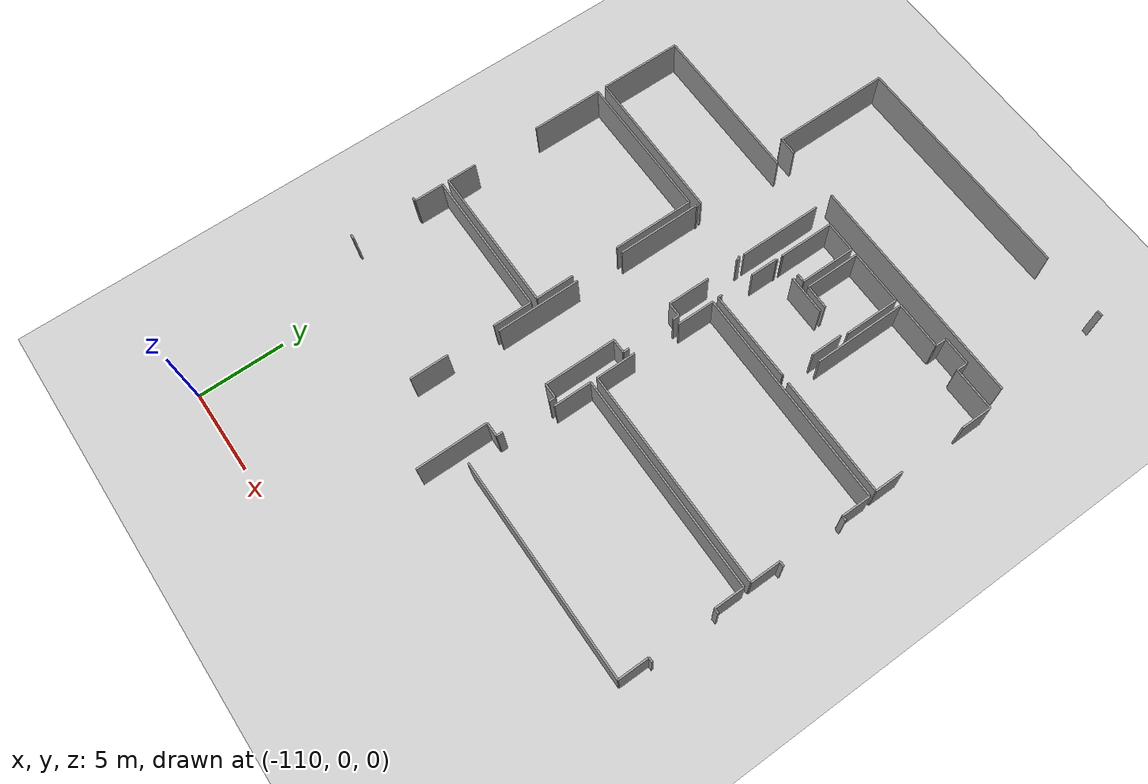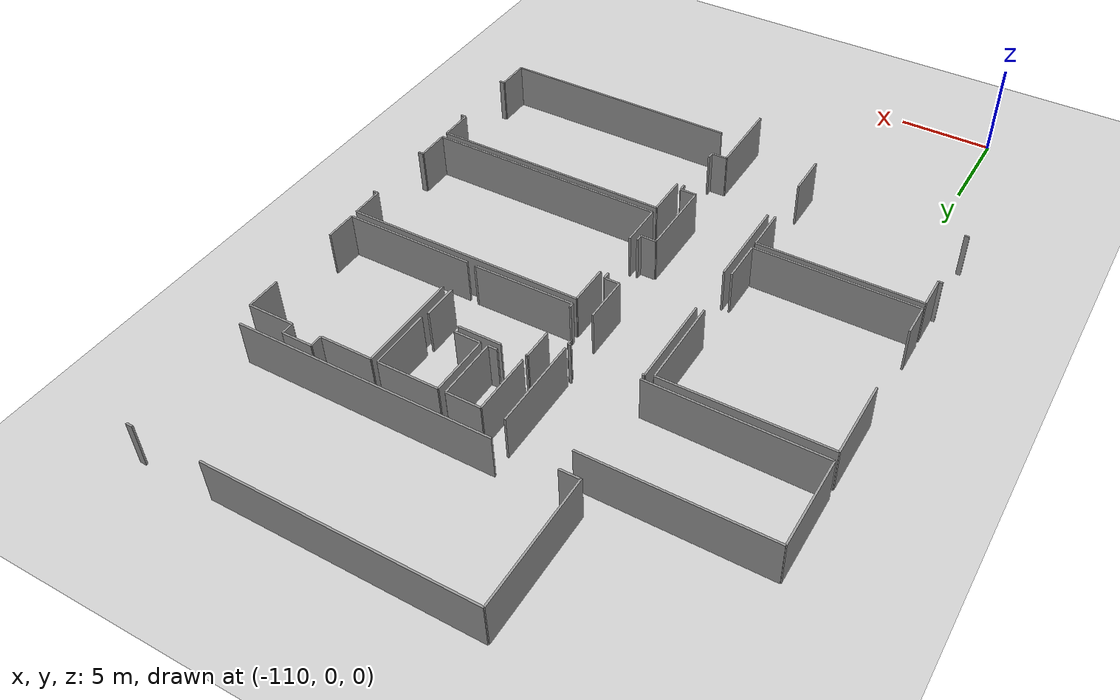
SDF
<sdf version="1.6">
 <world name="default">
  <model name="ground_plane">
   <static>1</static>
   <link name="link">
    <collision name="collision">
     <geometry><plane><normal>0 0 1</normal><size>100 100</size></plane></geometry>
     <surface><friction><ode><mu>100</mu><mu2>50</mu2></ode></friction></surface>
    </collision>
    <visual name="visual">
     <cast_shadows>0</cast_shadows>
     <geometry><plane><normal>0 0 1</normal><size>100 100</size></plane></geometry>
     <material>
      <script><uri>file://media/materials/scripts/gazebo.material</uri><name>Gazebo/Grey</name></script>
     </material>
    </visual>
   </link>
  </model>
  <model name="0510035520_A_40_1_103">
   <static>1</static>
   <link name="Wall_240">
    <collision name="Wall_240_Collision">
     <geometry><box><size>6.969245119 0.1 2.5</size></box></geometry>
     <pose>3.4846225595 0 1.25 0 0 0</pose>
    </collision>
    <visual name="Wall_240_Visual">
     <pose>3.4846225595 0 1.25 0 0 0</pose>
     <geometry><box><size>6.969245119 0.1 2.5</size></box></geometry>
     <material>
      <script><uri>file://media/materials/scripts/gazebo.material</uri><name>Gazebo/Grey</name></script>
      <ambient>1 1 1 1</ambient>
     </material>
    </visual>
    <pose>8.7397922602 -35.2068832051 0 0 0 1.57079632679</pose>
   </link>
   <link name="Wall_241">
    <collision name="Wall_241_Collision">
     <geometry><box><size>14.0143780814 0.1 2.5</size></box></geometry>
     <pose>7.00718904068 0 1.25 0 0 0</pose>
    </collision>
    <visual name="Wall_241_Visual">
     <pose>7.00718904068 0 1.25 0 0 0</pose>
     <geometry><box><size>14.0143780814 0.1 2.5</size></box></geometry>
     <material>
      <script><uri>file://media/materials/scripts/gazebo.material</uri><name>Gazebo/Grey</name></script>
      <ambient>1 1 1 1</ambient>
     </material>
    </visual>
    <pose>8.7397922602 -28.2376380861 0 0 0 0.0</pose>
   </link>
   <link name="Wall_242">
    <collision name="Wall_242_Collision">
     <geometry><box><size>0.358880971567 0.1 2.5</size></box></geometry>
     <pose>0.179440485784 0 1.25 0 0 0</pose>
    </collision>
    <visual name="Wall_242_Visual">
     <pose>0.179440485784 0 1.25 0 0 0</pose>
     <geometry><box><size>0.358880971567 0.1 2.5</size></box></geometry>
     <material>
      <script><uri>file://media/materials/scripts/gazebo.material</uri><name>Gazebo/Grey</name></script>
      <ambient>1 1 1 1</ambient>
     </material>
    </visual>
    <pose>26.5016084923 -28.2376380861 0 0 0 0.0</pose>
   </link>
   <link name="Wall_244">
    <collision name="Wall_244_Collision">
     <geometry><box><size>13.7882373843 0.1 2.5</size></box></geometry>
     <pose>6.89411869214 0 1.25 0 0 0</pose>
    </collision>
    <visual name="Wall_244_Visual">
     <pose>6.89411869214 0 1.25 0 0 0</pose>
     <geometry><box><size>13.7882373843 0.1 2.5</size></box></geometry>
     <material>
      <script><uri>file://media/materials/scripts/gazebo.material</uri><name>Gazebo/Grey</name></script>
      <ambient>1 1 1 1</ambient>
     </material>
    </visual>
    <pose>26.8604894639 -35.1700814081 0 0 0 3.14159265359</pose>
   </link>
   <link name="Wall_245">
    <collision name="Wall_245_Collision">
     <geometry><box><size>1.07435866524 0.1 2.5</size></box></geometry>
     <pose>0.537179332618 0 1.25 0 0 0</pose>
    </collision>
    <visual name="Wall_245_Visual">
     <pose>0.537179332618 0 1.25 0 0 0</pose>
     <geometry><box><size>1.07435866524 0.1 2.5</size></box></geometry>
     <material>
      <script><uri>file://media/materials/scripts/gazebo.material</uri><name>Gazebo/Grey</name></script>
      <ambient>1 1 1 1</ambient>
     </material>
    </visual>
    <pose>9.81592756391 -35.1700814081 0 0 0 3.14159265359</pose>
   </link>
   <link name="Wall_246">
    <collision name="Wall_246_Collision">
     <geometry><box><size>0.0368446563628 0.1 2.5</size></box></geometry>
     <pose>0.0184223281814 0 1.25 0 0 0</pose>
    </collision>
    <visual name="Wall_246_Visual">
     <pose>0.0184223281814 0 1.25 0 0 0</pose>
     <geometry><box><size>0.0368446563628 0.1 2.5</size></box></geometry>
     <material>
      <script><uri>file://media/materials/scripts/gazebo.material</uri><name>Gazebo/Grey</name></script>
      <ambient>1 1 1 1</ambient>
     </material>
    </visual>
    <pose>8.74156889867 -35.1700814081 0 0 0 -1.61903473797</pose>
   </link>
   <link name="Wall_247">
    <collision name="Wall_247_Collision">
     <geometry><box><size>4.82331964899 0.1 2.5</size></box></geometry>
     <pose>2.41165982449 0 1.25 0 0 0</pose>
    </collision>
    <visual name="Wall_247_Visual">
     <pose>2.41165982449 0 1.25 0 0 0</pose>
     <geometry><box><size>4.82331964899 0.1 2.5</size></box></geometry>
     <material>
      <script><uri>file://media/materials/scripts/gazebo.material</uri><name>Gazebo/Grey</name></script>
      <ambient>1 1 1 1</ambient>
     </material>
    </visual>
    <pose>0.231978223488 -41.1289268469 0 0 0 1.57079632679</pose>
   </link>
   <link name="Wall_248">
    <collision name="Wall_248_Collision">
     <geometry><box><size>9.59334014378 0.1 2.5</size></box></geometry>
     <pose>4.79667007189 0 1.25 0 0 0</pose>
    </collision>
    <visual name="Wall_248_Visual">
     <pose>4.79667007189 0 1.25 0 0 0</pose>
     <geometry><box><size>9.59334014378 0.1 2.5</size></box></geometry>
     <material>
      <script><uri>file://media/materials/scripts/gazebo.material</uri><name>Gazebo/Grey</name></script>
      <ambient>1 1 1 1</ambient>
     </material>
    </visual>
    <pose>0.231978223488 -36.3056071979 0 0 0 0.0</pose>
   </link>
   <link name="Wall_249">
    <collision name="Wall_249_Collision">
     <geometry><box><size>4.89946129783 0.1 2.5</size></box></geometry>
     <pose>2.44973064892 0 1.25 0 0 0</pose>
    </collision>
    <visual name="Wall_249_Visual">
     <pose>2.44973064892 0 1.25 0 0 0</pose>
     <geometry><box><size>4.89946129783 0.1 2.5</size></box></geometry>
     <material>
      <script><uri>file://media/materials/scripts/gazebo.material</uri><name>Gazebo/Grey</name></script>
      <ambient>1 1 1 1</ambient>
     </material>
    </visual>
    <pose>13.1829112759 -36.3056071979 0 0 0 -1.57079632679</pose>
   </link>
   <link name="Wall_250">
    <collision name="Wall_250_Collision">
     <geometry><box><size>9.14289864022 0.1 2.5</size></box></geometry>
     <pose>4.57144932011 0 1.25 0 0 0</pose>
    </collision>
    <visual name="Wall_250_Visual">
     <pose>4.57144932011 0 1.25 0 0 0</pose>
     <geometry><box><size>9.14289864022 0.1 2.5</size></box></geometry>
     <material>
      <script><uri>file://media/materials/scripts/gazebo.material</uri><name>Gazebo/Grey</name></script>
      <ambient>1 1 1 1</ambient>
     </material>
    </visual>
    <pose>9.37455980609 -41.2050684958 0 0 0 3.13326460228</pose>
   </link>
   <link name="Wall_251">
    <collision name="Wall_251_Collision">
     <geometry><box><size>1.83958223615 0.1 2.5</size></box></geometry>
     <pose>0.919791118077 0 1.25 0 0 0</pose>
    </collision>
    <visual name="Wall_251_Visual">
     <pose>0.919791118077 0 1.25 0 0 0</pose>
     <geometry><box><size>1.83958223615 0.1 2.5</size></box></geometry>
     <material>
      <script><uri>file://media/materials/scripts/gazebo.material</uri><name>Gazebo/Grey</name></script>
      <ambient>1 1 1 1</ambient>
     </material>
    </visual>
    <pose>14.4222435137 -36.3583987411 0 0 0 0.0</pose>
   </link>
   <link name="Wall_252">
    <collision name="Wall_252_Collision">
     <geometry><box><size>3.24667990685 0.1 2.5</size></box></geometry>
     <pose>1.62333995343 0 1.25 0 0 0</pose>
    </collision>
    <visual name="Wall_252_Visual">
     <pose>1.62333995343 0 1.25 0 0 0</pose>
     <geometry><box><size>3.24667990685 0.1 2.5</size></box></geometry>
     <material>
      <script><uri>file://media/materials/scripts/gazebo.material</uri><name>Gazebo/Grey</name></script>
      <ambient>1 1 1 1</ambient>
     </material>
    </visual>
    <pose>16.2618257498 -36.3583987411 0 0 0 -1.57079632679</pose>
   </link>
   <link name="Wall_253">
    <collision name="Wall_253_Collision">
     <geometry><box><size>0.497712577966 0.1 2.5</size></box></geometry>
     <pose>0.248856288983 0 1.25 0 0 0</pose>
    </collision>
    <visual name="Wall_253_Visual">
     <pose>0.248856288983 0 1.25 0 0 0</pose>
     <geometry><box><size>0.497712577966 0.1 2.5</size></box></geometry>
     <material>
      <script><uri>file://media/materials/scripts/gazebo.material</uri><name>Gazebo/Grey</name></script>
      <ambient>1 1 1 1</ambient>
     </material>
    </visual>
    <pose>16.2618257498 -39.605078648 0 0 0 3.14159265359</pose>
   </link>
   <link name="Wall_254">
    <collision name="Wall_254_Collision">
     <geometry><box><size>0.0654818180088 0.1 2.5</size></box></geometry>
     <pose>0.0327409090044 0 1.25 0 0 0</pose>
    </collision>
    <visual name="Wall_254_Visual">
     <pose>0.0327409090044 0 1.25 0 0 0</pose>
     <geometry><box><size>0.0654818180088 0.1 2.5</size></box></geometry>
     <material>
      <script><uri>file://media/materials/scripts/gazebo.material</uri><name>Gazebo/Grey</name></script>
      <ambient>1 1 1 1</ambient>
     </material>
    </visual>
    <pose>14.4867101097 -39.605078648 0 0 0 3.14159265359</pose>
   </link>
   <link name="Wall_255">
    <collision name="Wall_255_Collision">
     <geometry><box><size>3.24668006558 0.1 2.5</size></box></geometry>
     <pose>1.62334003279 0 1.25 0 0 0</pose>
    </collision>
    <visual name="Wall_255_Visual">
     <pose>1.62334003279 0 1.25 0 0 0</pose>
     <geometry><box><size>3.24668006558 0.1 2.5</size></box></geometry>
     <material>
      <script><uri>file://media/materials/scripts/gazebo.material</uri><name>Gazebo/Grey</name></script>
      <ambient>1 1 1 1</ambient>
     </material>
    </visual>
    <pose>14.4212282917 -39.605078648 0 0 0 1.57048363137</pose>
   </link>
   <link name="Wall_256">
    <collision name="Wall_256_Collision">
     <geometry><box><size>3.23449724304 0.1 2.5</size></box></geometry>
     <pose>1.61724862152 0 1.25 0 0 0</pose>
    </collision>
    <visual name="Wall_256_Visual">
     <pose>1.61724862152 0 1.25 0 0 0</pose>
     <geometry><box><size>3.23449724304 0.1 2.5</size></box></geometry>
     <material>
      <script><uri>file://media/materials/scripts/gazebo.material</uri><name>Gazebo/Grey</name></script>
      <ambient>1 1 1 1</ambient>
     </material>
    </visual>
    <pose>16.6580161293 -39.5903579292 0 0 0 1.57079632679</pose>
   </link>
   <link name="Wall_257">
    <collision name="Wall_257_Collision">
     <geometry><box><size>3.26799956853 0.1 2.5</size></box></geometry>
     <pose>1.63399978427 0 1.25 0 0 0</pose>
    </collision>
    <visual name="Wall_257_Visual">
     <pose>1.63399978427 0 1.25 0 0 0</pose>
     <geometry><box><size>3.26799956853 0.1 2.5</size></box></geometry>
     <material>
      <script><uri>file://media/materials/scripts/gazebo.material</uri><name>Gazebo/Grey</name></script>
      <ambient>1 1 1 1</ambient>
     </material>
    </visual>
    <pose>16.6580161293 -36.3558606862 0 0 0 0.0</pose>
   </link>
   <link name="Wall_258">
    <collision name="Wall_258_Collision">
     <geometry><box><size>3.24972557281 0.1 2.5</size></box></geometry>
     <pose>1.6248627864 0 1.25 0 0 0</pose>
    </collision>
    <visual name="Wall_258_Visual">
     <pose>1.6248627864 0 1.25 0 0 0</pose>
     <geometry><box><size>3.24972557281 0.1 2.5</size></box></geometry>
     <material>
      <script><uri>file://media/materials/scripts/gazebo.material</uri><name>Gazebo/Grey</name></script>
      <ambient>1 1 1 1</ambient>
     </material>
    </visual>
    <pose>19.9260156979 -36.3558606862 0 0 0 -1.57079632679</pose>
   </link>
   <link name="Wall_259">
    <collision name="Wall_259_Collision">
     <geometry><box><size>1.43484328298 0.1 2.5</size></box></geometry>
     <pose>0.717421641491 0 1.25 0 0 0</pose>
    </collision>
    <visual name="Wall_259_Visual">
     <pose>0.717421641491 0 1.25 0 0 0</pose>
     <geometry><box><size>1.43484328298 0.1 2.5</size></box></geometry>
     <material>
      <script><uri>file://media/materials/scripts/gazebo.material</uri><name>Gazebo/Grey</name></script>
      <ambient>1 1 1 1</ambient>
     </material>
    </visual>
    <pose>18.0927785991 -39.605586259 0 0 0 3.13097921876</pose>
   </link>
   <link name="Wall_260">
    <collision name="Wall_260_Collision">
     <geometry><box><size>2.8210480898 0.1 2.5</size></box></geometry>
     <pose>1.4105240449 0 1.25 0 0 0</pose>
    </collision>
    <visual name="Wall_260_Visual">
     <pose>1.4105240449 0 1.25 0 0 0</pose>
     <geometry><box><size>2.8210480898 0.1 2.5</size></box></geometry>
     <material>
      <script><uri>file://media/materials/scripts/gazebo.material</uri><name>Gazebo/Grey</name></script>
      <ambient>1 1 1 1</ambient>
     </material>
    </visual>
    <pose>20.2851504749 -36.3459622718 0 0 0 0.0</pose>
   </link>
   <link name="Wall_261">
    <collision name="Wall_261_Collision">
     <geometry><box><size>0.661670928484 0.1 2.5</size></box></geometry>
     <pose>0.330835464242 0 1.25 0 0 0</pose>
    </collision>
    <visual name="Wall_261_Visual">
     <pose>0.330835464242 0 1.25 0 0 0</pose>
     <geometry><box><size>0.661670928484 0.1 2.5</size></box></geometry>
     <material>
      <script><uri>file://media/materials/scripts/gazebo.material</uri><name>Gazebo/Grey</name></script>
      <ambient>1 1 1 1</ambient>
     </material>
    </visual>
    <pose>23.1061985647 -36.3459622718 0 0 0 1.57079632679</pose>
   </link>
   <link name="Wall_262">
    <collision name="Wall_262_Collision">
     <geometry><box><size>1.65861891739 0.1 2.5</size></box></geometry>
     <pose>0.829309458696 0 1.25 0 0 0</pose>
    </collision>
    <visual name="Wall_262_Visual">
     <pose>0.829309458696 0 1.25 0 0 0</pose>
     <geometry><box><size>1.65861891739 0.1 2.5</size></box></geometry>
     <material>
      <script><uri>file://media/materials/scripts/gazebo.material</uri><name>Gazebo/Grey</name></script>
      <ambient>1 1 1 1</ambient>
     </material>
    </visual>
    <pose>23.1061985647 -35.6842913433 0 0 0 0.0</pose>
   </link>
   <link name="Wall_263">
    <collision name="Wall_263_Collision">
     <geometry><box><size>0.654818180088 0.1 2.5</size></box></geometry>
     <pose>0.327409090044 0 1.25 0 0 0</pose>
    </collision>
    <visual name="Wall_263_Visual">
     <pose>0.327409090044 0 1.25 0 0 0</pose>
     <geometry><box><size>0.654818180088 0.1 2.5</size></box></geometry>
     <material>
      <script><uri>file://media/materials/scripts/gazebo.material</uri><name>Gazebo/Grey</name></script>
      <ambient>1 1 1 1</ambient>
     </material>
    </visual>
    <pose>24.7648174821 -35.6842913433 0 0 0 -1.57079632679</pose>
   </link>
   <link name="Wall_264">
    <collision name="Wall_264_Collision">
     <geometry><box><size>2.51394343945 0.1 2.5</size></box></geometry>
     <pose>1.25697171972 0 1.25 0 0 0</pose>
    </collision>
    <visual name="Wall_264_Visual">
     <pose>1.25697171972 0 1.25 0 0 0</pose>
     <geometry><box><size>2.51394343945 0.1 2.5</size></box></geometry>
     <material>
      <script><uri>file://media/materials/scripts/gazebo.material</uri><name>Gazebo/Grey</name></script>
      <ambient>1 1 1 1</ambient>
     </material>
    </visual>
    <pose>24.7648174821 -36.3391095234 0 0 0 0.0</pose>
   </link>
   <link name="Wall_265">
    <collision name="Wall_265_Collision">
     <geometry><box><size>1.8301914328 0.1 2.5</size></box></geometry>
     <pose>0.915095716398 0 1.25 0 0 0</pose>
    </collision>
    <visual name="Wall_265_Visual">
     <pose>0.915095716398 0 1.25 0 0 0</pose>
     <geometry><box><size>1.8301914328 0.1 2.5</size></box></geometry>
     <material>
      <script><uri>file://media/materials/scripts/gazebo.material</uri><name>Gazebo/Grey</name></script>
      <ambient>1 1 1 1</ambient>
     </material>
    </visual>
    <pose>27.2787609216 -36.3391095234 0 0 0 -1.57079632679</pose>
   </link>
   <link name="Wall_266">
    <collision name="Wall_266_Collision">
     <geometry><box><size>1.70075062975 0.1 2.5</size></box></geometry>
     <pose>0.850375314877 0 1.25 0 0 0</pose>
    </collision>
    <visual name="Wall_266_Visual">
     <pose>0.850375314877 0 1.25 0 0 0</pose>
     <geometry><box><size>1.70075062975 0.1 2.5</size></box></geometry>
     <material>
      <script><uri>file://media/materials/scripts/gazebo.material</uri><name>Gazebo/Grey</name></script>
      <ambient>1 1 1 1</ambient>
     </material>
    </visual>
    <pose>27.2787609216 -42.0921187048 0 0 0 -1.57079632679</pose>
   </link>
   <link name="Wall_267">
    <collision name="Wall_267_Collision">
     <geometry><box><size>6.99513327961 0.1 2.5</size></box></geometry>
     <pose>3.49756663981 0 1.25 0 0 0</pose>
    </collision>
    <visual name="Wall_267_Visual">
     <pose>3.49756663981 0 1.25 0 0 0</pose>
     <geometry><box><size>6.99513327961 0.1 2.5</size></box></geometry>
     <material>
      <script><uri>file://media/materials/scripts/gazebo.material</uri><name>Gazebo/Grey</name></script>
      <ambient>1 1 1 1</ambient>
     </material>
    </visual>
    <pose>27.2787609216 -43.7928693346 0 0 0 3.14159265359</pose>
   </link>
   <link name="Wall_268">
    <collision name="Wall_268_Collision">
     <geometry><box><size>5.43270685869 0.1 2.5</size></box></geometry>
     <pose>2.71635342935 0 1.25 0 0 0</pose>
    </collision>
    <visual name="Wall_268_Visual">
     <pose>2.71635342935 0 1.25 0 0 0</pose>
     <geometry><box><size>5.43270685869 0.1 2.5</size></box></geometry>
     <material>
      <script><uri>file://media/materials/scripts/gazebo.material</uri><name>Gazebo/Grey</name></script>
      <ambient>1 1 1 1</ambient>
     </material>
    </visual>
    <pose>20.283627642 -41.7786689171 0 0 0 1.57051601846</pose>
   </link>
   <link name="Wall_269">
    <collision name="Wall_269_Collision">
     <geometry><box><size>0.245176109289 0.1 2.5</size></box></geometry>
     <pose>0.122588054644 0 1.25 0 0 0</pose>
    </collision>
    <visual name="Wall_269_Visual">
     <pose>0.122588054644 0 1.25 0 0 0</pose>
     <geometry><box><size>0.245176109289 0.1 2.5</size></box></geometry>
     <material>
      <script><uri>file://media/materials/scripts/gazebo.material</uri><name>Gazebo/Grey</name></script>
      <ambient>1 1 1 1</ambient>
     </material>
    </visual>
    <pose>14.3933096871 -43.8111433303 0 0 0 1.57079632679</pose>
   </link>
   <link name="Wall_270">
    <collision name="Wall_270_Collision">
     <geometry><box><size>1.63450739526 0.1 2.5</size></box></geometry>
     <pose>0.817253697629 0 1.25 0 0 0</pose>
    </collision>
    <visual name="Wall_270_Visual">
     <pose>0.817253697629 0 1.25 0 0 0</pose>
     <geometry><box><size>1.63450739526 0.1 2.5</size></box></geometry>
     <material>
      <script><uri>file://media/materials/scripts/gazebo.material</uri><name>Gazebo/Grey</name></script>
      <ambient>1 1 1 1</ambient>
     </material>
    </visual>
    <pose>14.3933096871 -41.5956751543 0 0 0 1.57079632679</pose>
   </link>
   <link name="Wall_271">
    <collision name="Wall_271_Collision">
     <geometry><box><size>0.104567864417 0.1 2.5</size></box></geometry>
     <pose>0.0522839322086 0 1.25 0 0 0</pose>
    </collision>
    <visual name="Wall_271_Visual">
     <pose>0.0522839322086 0 1.25 0 0 0</pose>
     <geometry><box><size>0.104567864417 0.1 2.5</size></box></geometry>
     <material>
      <script><uri>file://media/materials/scripts/gazebo.material</uri><name>Gazebo/Grey</name></script>
      <ambient>1 1 1 1</ambient>
     </material>
    </visual>
    <pose>14.3933096871 -39.9611677591 0 0 0 0.0</pose>
   </link>
   <link name="Wall_272">
    <collision name="Wall_272_Collision">
     <geometry><box><size>2.32917303824 0.1 2.5</size></box></geometry>
     <pose>1.16458651912 0 1.25 0 0 0</pose>
    </collision>
    <visual name="Wall_272_Visual">
     <pose>1.16458651912 0 1.25 0 0 0</pose>
     <geometry><box><size>2.32917303824 0.1 2.5</size></box></geometry>
     <material>
      <script><uri>file://media/materials/scripts/gazebo.material</uri><name>Gazebo/Grey</name></script>
      <ambient>1 1 1 1</ambient>
     </material>
    </visual>
    <pose>15.7950774424 -39.9611677591 0 0 0 0.0</pose>
   </link>
   <link name="Wall_273">
    <collision name="Wall_273_Collision">
     <geometry><box><size>1.85709481539 0.1 2.5</size></box></geometry>
     <pose>0.928547407694 0 1.25 0 0 0</pose>
    </collision>
    <visual name="Wall_273_Visual">
     <pose>0.928547407694 0 1.25 0 0 0</pose>
     <geometry><box><size>1.85709481539 0.1 2.5</size></box></geometry>
     <material>
      <script><uri>file://media/materials/scripts/gazebo.material</uri><name>Gazebo/Grey</name></script>
      <ambient>1 1 1 1</ambient>
     </material>
    </visual>
    <pose>19.8036814487 -39.9611677591 0 0 0 -1.57079632679</pose>
   </link>
   <link name="Wall_274">
    <collision name="Wall_274_Collision">
     <geometry><box><size>0.0535529596894 0.1 2.5</size></box></geometry>
     <pose>0.0267764798447 0 1.25 0 0 0</pose>
    </collision>
    <visual name="Wall_274_Visual">
     <pose>0.0267764798447 0 1.25 0 0 0</pose>
     <geometry><box><size>0.0535529596894 0.1 2.5</size></box></geometry>
     <material>
      <script><uri>file://media/materials/scripts/gazebo.material</uri><name>Gazebo/Grey</name></script>
      <ambient>1 1 1 1</ambient>
     </material>
    </visual>
    <pose>19.8036814487 -43.7093673263 0 0 0 -1.57079632679</pose>
   </link>
   <link name="Wall_275">
    <collision name="Wall_275_Collision">
     <geometry><box><size>5.41058666512 0.1 2.5</size></box></geometry>
     <pose>2.70529333256 0 1.25 0 0 0</pose>
    </collision>
    <visual name="Wall_275_Visual">
     <pose>2.70529333256 0 1.25 0 0 0</pose>
     <geometry><box><size>5.41058666512 0.1 2.5</size></box></geometry>
     <material>
      <script><uri>file://media/materials/scripts/gazebo.material</uri><name>Gazebo/Grey</name></script>
      <ambient>1 1 1 1</ambient>
     </material>
    </visual>
    <pose>19.8036814487 -43.762920286 0 0 0 -3.13267981553</pose>
   </link>
   <link name="Wall_276">
    <collision name="Wall_276_Collision">
     <geometry><box><size>12.8760604311 0.1 2.5</size></box></geometry>
     <pose>6.43803021554 0 1.25 0 0 0</pose>
    </collision>
    <visual name="Wall_276_Visual">
     <pose>6.43803021554 0 1.25 0 0 0</pose>
     <geometry><box><size>12.8760604311 0.1 2.5</size></box></geometry>
     <material>
      <script><uri>file://media/materials/scripts/gazebo.material</uri><name>Gazebo/Grey</name></script>
      <ambient>1 1 1 1</ambient>
     </material>
    </visual>
    <pose>14.4232587357 -44.192612991 0 0 0 0.0</pose>
   </link>
   <link name="Wall_277">
    <collision name="Wall_277_Collision">
     <geometry><box><size>1.73323773326 0.1 2.5</size></box></geometry>
     <pose>0.866618866632 0 1.25 0 0 0</pose>
    </collision>
    <visual name="Wall_277_Visual">
     <pose>0.866618866632 0 1.25 0 0 0</pose>
     <geometry><box><size>1.73323773326 0.1 2.5</size></box></geometry>
     <material>
      <script><uri>file://media/materials/scripts/gazebo.material</uri><name>Gazebo/Grey</name></script>
      <ambient>1 1 1 1</ambient>
     </material>
    </visual>
    <pose>27.2993191668 -44.192612991 0 0 0 -1.57079632679</pose>
   </link>
   <link name="Wall_278">
    <collision name="Wall_278_Collision">
     <geometry><box><size>0.277409407301 0.1 2.5</size></box></geometry>
     <pose>0.13870470365 0 1.25 0 0 0</pose>
    </collision>
    <visual name="Wall_278_Visual">
     <pose>0.13870470365 0 1.25 0 0 0</pose>
     <geometry><box><size>0.277409407301 0.1 2.5</size></box></geometry>
     <material>
      <script><uri>file://media/materials/scripts/gazebo.material</uri><name>Gazebo/Grey</name></script>
      <ambient>1 1 1 1</ambient>
     </material>
    </visual>
    <pose>27.2993191668 -45.9258507243 0 0 0 0.0</pose>
   </link>
   <link name="Wall_279">
    <collision name="Wall_279_Collision">
     <geometry><box><size>0.291622515086 0.1 2.5</size></box></geometry>
     <pose>0.145811257543 0 1.25 0 0 0</pose>
    </collision>
    <visual name="Wall_279_Visual">
     <pose>0.145811257543 0 1.25 0 0 0</pose>
     <geometry><box><size>0.291622515086 0.1 2.5</size></box></geometry>
     <material>
      <script><uri>file://media/materials/scripts/gazebo.material</uri><name>Gazebo/Grey</name></script>
      <ambient>1 1 1 1</ambient>
     </material>
    </visual>
    <pose>27.5767285741 -49.77557249 0 0 0 3.14159265359</pose>
   </link>
   <link name="Wall_280">
    <collision name="Wall_280_Collision">
     <geometry><box><size>1.74821225754 0.1 2.5</size></box></geometry>
     <pose>0.874106128768 0 1.25 0 0 0</pose>
    </collision>
    <visual name="Wall_280_Visual">
     <pose>0.874106128768 0 1.25 0 0 0</pose>
     <geometry><box><size>1.74821225754 0.1 2.5</size></box></geometry>
     <material>
      <script><uri>file://media/materials/scripts/gazebo.material</uri><name>Gazebo/Grey</name></script>
      <ambient>1 1 1 1</ambient>
     </material>
    </visual>
    <pose>27.285106059 -49.77557249 0 0 0 -1.57079632679</pose>
   </link>
   <link name="Wall_281">
    <collision name="Wall_281_Collision">
     <geometry><box><size>12.8674310442 0.1 2.5</size></box></geometry>
     <pose>6.43371552211 0 1.25 0 0 0</pose>
    </collision>
    <visual name="Wall_281_Visual">
     <pose>6.43371552211 0 1.25 0 0 0</pose>
     <geometry><box><size>12.8674310442 0.1 2.5</size></box></geometry>
     <material>
      <script><uri>file://media/materials/scripts/gazebo.material</uri><name>Gazebo/Grey</name></script>
      <ambient>1 1 1 1</ambient>
     </material>
    </visual>
    <pose>27.285106059 -51.5237847476 0 0 0 3.14159265359</pose>
   </link>
   <link name="Wall_282">
    <collision name="Wall_282_Collision">
     <geometry><box><size>2.32917303824 0.1 2.5</size></box></geometry>
     <pose>1.16458651912 0 1.25 0 0 0</pose>
    </collision>
    <visual name="Wall_282_Visual">
     <pose>1.16458651912 0 1.25 0 0 0</pose>
     <geometry><box><size>2.32917303824 0.1 2.5</size></box></geometry>
     <material>
      <script><uri>file://media/materials/scripts/gazebo.material</uri><name>Gazebo/Grey</name></script>
      <ambient>1 1 1 1</ambient>
     </material>
    </visual>
    <pose>14.4176750148 -51.5237847476 0 0 0 1.57079632679</pose>
   </link>
   <link name="Wall_283">
    <collision name="Wall_283_Collision">
     <geometry><box><size>2.20684585302 0.1 2.5</size></box></geometry>
     <pose>1.10342292651 0 1.25 0 0 0</pose>
    </collision>
    <visual name="Wall_283_Visual">
     <pose>1.10342292651 0 1.25 0 0 0</pose>
     <geometry><box><size>2.20684585302 0.1 2.5</size></box></geometry>
     <material>
      <script><uri>file://media/materials/scripts/gazebo.material</uri><name>Gazebo/Grey</name></script>
      <ambient>1 1 1 1</ambient>
     </material>
    </visual>
    <pose>14.4176750148 -46.3994517801 0 0 0 1.56826614243</pose>
   </link>
   <link name="Wall_284">
    <collision name="Wall_284_Collision">
     <geometry><box><size>12.851948909 0.1 2.5</size></box></geometry>
     <pose>6.42597445448 0 1.25 0 0 0</pose>
    </collision>
    <visual name="Wall_284_Visual">
     <pose>6.42597445448 0 1.25 0 0 0</pose>
     <geometry><box><size>12.851948909 0.1 2.5</size></box></geometry>
     <material>
      <script><uri>file://media/materials/scripts/gazebo.material</uri><name>Gazebo/Grey</name></script>
      <ambient>1 1 1 1</ambient>
     </material>
    </visual>
    <pose>14.4148831543 -51.9204827381 0 0 0 0.0</pose>
   </link>
   <link name="Wall_285">
    <collision name="Wall_285_Collision">
     <geometry><box><size>1.75328836746 0.1 2.5</size></box></geometry>
     <pose>0.87664418373 0 1.25 0 0 0</pose>
    </collision>
    <visual name="Wall_285_Visual">
     <pose>0.87664418373 0 1.25 0 0 0</pose>
     <geometry><box><size>1.75328836746 0.1 2.5</size></box></geometry>
     <material>
      <script><uri>file://media/materials/scripts/gazebo.material</uri><name>Gazebo/Grey</name></script>
      <ambient>1 1 1 1</ambient>
     </material>
    </visual>
    <pose>27.2668320632 -51.9204827381 0 0 0 -1.57079632679</pose>
   </link>
   <link name="Wall_286">
    <collision name="Wall_286_Collision">
     <geometry><box><size>0.300505707451 0.1 2.5</size></box></geometry>
     <pose>0.150252853726 0 1.25 0 0 0</pose>
    </collision>
    <visual name="Wall_286_Visual">
     <pose>0.150252853726 0 1.25 0 0 0</pose>
     <geometry><box><size>0.300505707451 0.1 2.5</size></box></geometry>
     <material>
      <script><uri>file://media/materials/scripts/gazebo.material</uri><name>Gazebo/Grey</name></script>
      <ambient>1 1 1 1</ambient>
     </material>
    </visual>
    <pose>27.2668320632 -53.6737711055 0 0 0 0.0</pose>
   </link>
   <link name="Wall_287">
    <collision name="Wall_287_Collision">
     <geometry><box><size>0.271318075393 0.1 2.5</size></box></geometry>
     <pose>0.135659037696 0 1.25 0 0 0</pose>
    </collision>
    <visual name="Wall_287_Visual">
     <pose>0.135659037696 0 1.25 0 0 0</pose>
     <geometry><box><size>0.271318075393 0.1 2.5</size></box></geometry>
     <material>
      <script><uri>file://media/materials/scripts/gazebo.material</uri><name>Gazebo/Grey</name></script>
      <ambient>1 1 1 1</ambient>
     </material>
    </visual>
    <pose>27.5673377707 -57.5166401228 0 0 0 3.14159265359</pose>
   </link>
   <link name="Wall_288">
    <collision name="Wall_288_Collision">
     <geometry><box><size>1.7639481983 0.1 2.5</size></box></geometry>
     <pose>0.881974099149 0 1.25 0 0 0</pose>
    </collision>
    <visual name="Wall_288_Visual">
     <pose>0.881974099149 0 1.25 0 0 0</pose>
     <geometry><box><size>1.7639481983 0.1 2.5</size></box></geometry>
     <material>
      <script><uri>file://media/materials/scripts/gazebo.material</uri><name>Gazebo/Grey</name></script>
      <ambient>1 1 1 1</ambient>
     </material>
    </visual>
    <pose>27.2960196953 -57.5166401228 0 0 0 -1.57079632679</pose>
   </link>
   <link name="Wall_289">
    <collision name="Wall_289_Collision">
     <geometry><box><size>12.881136541 0.1 2.5</size></box></geometry>
     <pose>6.44056827051 0 1.25 0 0 0</pose>
    </collision>
    <visual name="Wall_289_Visual">
     <pose>6.44056827051 0 1.25 0 0 0</pose>
     <geometry><box><size>12.881136541 0.1 2.5</size></box></geometry>
     <material>
      <script><uri>file://media/materials/scripts/gazebo.material</uri><name>Gazebo/Grey</name></script>
      <ambient>1 1 1 1</ambient>
     </material>
    </visual>
    <pose>27.2960196953 -59.2805883211 0 0 0 3.14159265359</pose>
   </link>
   <link name="Wall_291">
    <collision name="Wall_291_Collision">
     <geometry><box><size>2.2327269497 0.1 2.5</size></box></geometry>
     <pose>1.11636347485 0 1.25 0 0 0</pose>
    </collision>
    <visual name="Wall_291_Visual">
     <pose>1.11636347485 0 1.25 0 0 0</pose>
     <geometry><box><size>2.2327269497 0.1 2.5</size></box></geometry>
     <material>
      <script><uri>file://media/materials/scripts/gazebo.material</uri><name>Gazebo/Grey</name></script>
      <ambient>1 1 1 1</ambient>
     </material>
    </visual>
    <pose>14.4148831543 -54.1532096878 0 0 0 1.57079632679</pose>
   </link>
   <link name="Wall_383">
    <collision name="Wall_383_Collision">
     <geometry><box><size>8.67659469166 0.1 2.5</size></box></geometry>
     <pose>4.33829734583 0 1.25 0 0 0</pose>
    </collision>
    <visual name="Wall_383_Visual">
     <pose>4.33829734583 0 1.25 0 0 0</pose>
     <geometry><box><size>8.67659469166 0.1 2.5</size></box></geometry>
     <material>
      <script><uri>file://media/materials/scripts/gazebo.material</uri><name>Gazebo/Grey</name></script>
      <ambient>1 1 1 1</ambient>
     </material>
    </visual>
    <pose>0.245683720281 -51.9303811524 0 0 0 0.0</pose>
   </link>
   <link name="Wall_384">
    <collision name="Wall_384_Collision">
     <geometry><box><size>2.30963001504 0.1 2.5</size></box></geometry>
     <pose>1.15481500752 0 1.25 0 0 0</pose>
    </collision>
    <visual name="Wall_384_Visual">
     <pose>1.15481500752 0 1.25 0 0 0</pose>
     <geometry><box><size>2.30963001504 0.1 2.5</size></box></geometry>
     <material>
      <script><uri>file://media/materials/scripts/gazebo.material</uri><name>Gazebo/Grey</name></script>
      <ambient>1 1 1 1</ambient>
     </material>
    </visual>
    <pose>8.92227841194 -51.9303811524 0 0 0 -1.57079632679</pose>
   </link>
   <link name="Wall_385">
    <collision name="Wall_385_Collision">
     <geometry><box><size>2.26496024771 0.1 2.5</size></box></geometry>
     <pose>1.13248012386 0 1.25 0 0 0</pose>
    </collision>
    <visual name="Wall_385_Visual">
     <pose>1.13248012386 0 1.25 0 0 0</pose>
     <geometry><box><size>2.26496024771 0.1 2.5</size></box></geometry>
     <material>
      <script><uri>file://media/materials/scripts/gazebo.material</uri><name>Gazebo/Grey</name></script>
      <ambient>1 1 1 1</ambient>
     </material>
    </visual>
    <pose>8.92227841194 -57.0361863186 0 0 0 -1.57079632679</pose>
   </link>
   <link name="Wall_388">
    <collision name="Wall_388_Collision">
     <geometry><box><size>0.25634355112 0.1 2.5</size></box></geometry>
     <pose>0.12817177556 0 1.25 0 0 0</pose>
    </collision>
    <visual name="Wall_388_Visual">
     <pose>0.12817177556 0 1.25 0 0 0</pose>
     <geometry><box><size>0.25634355112 0.1 2.5</size></box></geometry>
     <material>
      <script><uri>file://media/materials/scripts/gazebo.material</uri><name>Gazebo/Grey</name></script>
      <ambient>1 1 1 1</ambient>
     </material>
    </visual>
    <pose>0.270556658904 -57.5336450911 0 0 0 3.14159265359</pose>
   </link>
   <link name="Wall_389">
    <collision name="Wall_389_Collision">
     <geometry><box><size>0.230709196008 0.1 2.5</size></box></geometry>
     <pose>0.115354598004 0 1.25 0 0 0</pose>
    </collision>
    <visual name="Wall_389_Visual">
     <pose>0.115354598004 0 1.25 0 0 0</pose>
     <geometry><box><size>0.230709196008 0.1 2.5</size></box></geometry>
     <material>
      <script><uri>file://media/materials/scripts/gazebo.material</uri><name>Gazebo/Grey</name></script>
      <ambient>1 1 1 1</ambient>
     </material>
    </visual>
    <pose>0.0142131077848 -53.676055355 0 0 0 0.0</pose>
   </link>
   <link name="Wall_390">
    <collision name="Wall_390_Collision">
     <geometry><box><size>1.74567436863 0.1 2.5</size></box></geometry>
     <pose>0.872837184315 0 1.25 0 0 0</pose>
    </collision>
    <visual name="Wall_390_Visual">
     <pose>0.872837184315 0 1.25 0 0 0</pose>
     <geometry><box><size>1.74567436863 0.1 2.5</size></box></geometry>
     <material>
      <script><uri>file://media/materials/scripts/gazebo.material</uri><name>Gazebo/Grey</name></script>
      <ambient>1 1 1 1</ambient>
     </material>
    </visual>
    <pose>0.244922303792 -53.676055355 0 0 0 1.57036015352</pose>
   </link>
   <link name="Wall_391">
    <collision name="Wall_391_Collision">
     <geometry><box><size>8.67024955425 0.1 2.5</size></box></geometry>
     <pose>4.33512477713 0 1.25 0 0 0</pose>
    </collision>
    <visual name="Wall_391_Visual">
     <pose>4.33512477713 0 1.25 0 0 0</pose>
     <geometry><box><size>8.67024955425 0.1 2.5</size></box></geometry>
     <material>
      <script><uri>file://media/materials/scripts/gazebo.material</uri><name>Gazebo/Grey</name></script>
      <ambient>1 1 1 1</ambient>
     </material>
    </visual>
    <pose>0.252028857685 -41.6642026383 0 0 0 0.0</pose>
   </link>
   <link name="Wall_392">
    <collision name="Wall_392_Collision">
     <geometry><box><size>4.78601024105 0.1 2.5</size></box></geometry>
     <pose>2.39300512053 0 1.25 0 0 0</pose>
    </collision>
    <visual name="Wall_392_Visual">
     <pose>2.39300512053 0 1.25 0 0 0</pose>
     <geometry><box><size>4.78601024105 0.1 2.5</size></box></geometry>
     <material>
      <script><uri>file://media/materials/scripts/gazebo.material</uri><name>Gazebo/Grey</name></script>
      <ambient>1 1 1 1</ambient>
     </material>
    </visual>
    <pose>8.92227841194 -41.6642026383 0 0 0 -1.57079632679</pose>
   </link>
   <link name="Wall_393">
    <collision name="Wall_393_Collision">
     <geometry><box><size>2.25074713993 0.1 2.5</size></box></geometry>
     <pose>1.12537356996 0 1.25 0 0 0</pose>
    </collision>
    <visual name="Wall_393_Visual">
     <pose>1.12537356996 0 1.25 0 0 0</pose>
     <geometry><box><size>2.25074713993 0.1 2.5</size></box></geometry>
     <material>
      <script><uri>file://media/materials/scripts/gazebo.material</uri><name>Gazebo/Grey</name></script>
      <ambient>1 1 1 1</ambient>
     </material>
    </visual>
    <pose>8.92227841194 -49.2946110748 0 0 0 -1.57079632679</pose>
   </link>
   <link name="Wall_394">
    <collision name="Wall_394_Collision">
     <geometry><box><size>8.67684849715 0.1 2.5</size></box></geometry>
     <pose>4.33842424858 0 1.25 0 0 0</pose>
    </collision>
    <visual name="Wall_394_Visual">
     <pose>4.33842424858 0 1.25 0 0 0</pose>
     <geometry><box><size>8.67684849715 0.1 2.5</size></box></geometry>
     <material>
      <script><uri>file://media/materials/scripts/gazebo.material</uri><name>Gazebo/Grey</name></script>
      <ambient>1 1 1 1</ambient>
     </material>
    </visual>
    <pose>8.92227841194 -51.5453582147 0 0 0 3.14159265359</pose>
   </link>
   <link name="Wall_395">
    <collision name="Wall_395_Collision">
     <geometry><box><size>1.71978604197 0.1 2.5</size></box></geometry>
     <pose>0.859893020983 0 1.25 0 0 0</pose>
    </collision>
    <visual name="Wall_395_Visual">
     <pose>0.859893020983 0 1.25 0 0 0</pose>
     <geometry><box><size>1.71978604197 0.1 2.5</size></box></geometry>
     <material>
      <script><uri>file://media/materials/scripts/gazebo.material</uri><name>Gazebo/Grey</name></script>
      <ambient>1 1 1 1</ambient>
     </material>
    </visual>
    <pose>0.245429914785 -51.5453582147 0 0 0 1.57079632679</pose>
   </link>
   <link name="Wall_396">
    <collision name="Wall_396_Collision">
     <geometry><box><size>4.16952191283 0.1 2.5</size></box></geometry>
     <pose>2.08476095642 0 1.25 0 0 0</pose>
    </collision>
    <visual name="Wall_396_Visual">
     <pose>2.08476095642 0 1.25 0 0 0</pose>
     <geometry><box><size>4.16952191283 0.1 2.5</size></box></geometry>
     <material>
      <script><uri>file://media/materials/scripts/gazebo.material</uri><name>Gazebo/Grey</name></script>
      <ambient>1 1 1 1</ambient>
     </material>
    </visual>
    <pose>0.245429914785 -45.8337193292 0 0 0 1.56921366437</pose>
   </link>
   <link name="Wall_402">
    <collision name="Wall_402_Collision">
     <geometry><box><size>4.92458804195 0.1 2.5</size></box></geometry>
     <pose>2.46229402098 0 1.25 0 0 0</pose>
    </collision>
    <visual name="Wall_402_Visual">
     <pose>2.46229402098 0 1.25 0 0 0</pose>
     <geometry><box><size>4.92458804195 0.1 2.5</size></box></geometry>
     <material>
      <script><uri>file://media/materials/scripts/gazebo.material</uri><name>Gazebo/Grey</name></script>
      <ambient>1 1 1 1</ambient>
     </material>
    </visual>
    <pose>9.31237745953 -54.1757983769 0 0 0 1.57079632679</pose>
   </link>
   <link name="Wall_403">
    <collision name="Wall_403_Collision">
     <geometry><box><size>4.91849671005 0.1 2.5</size></box></geometry>
     <pose>2.45924835502 0 1.25 0 0 0</pose>
    </collision>
    <visual name="Wall_403_Visual">
     <pose>2.45924835502 0 1.25 0 0 0</pose>
     <geometry><box><size>4.91849671005 0.1 2.5</size></box></geometry>
     <material>
      <script><uri>file://media/materials/scripts/gazebo.material</uri><name>Gazebo/Grey</name></script>
      <ambient>1 1 1 1</ambient>
     </material>
    </visual>
    <pose>9.31237745953 -46.4063045285 0 0 0 1.57079632679</pose>
   </link>
   <link name="Wall_404">
    <collision name="Wall_404_Collision">
     <geometry><box><size>0.117765750217 0.1 2.5</size></box></geometry>
     <pose>0.0588828751087 0 1.25 0 0 0</pose>
    </collision>
    <visual name="Wall_404_Visual">
     <pose>0.0588828751087 0 1.25 0 0 0</pose>
     <geometry><box><size>0.117765750217 0.1 2.5</size></box></geometry>
     <material>
      <script><uri>file://media/materials/scripts/gazebo.material</uri><name>Gazebo/Grey</name></script>
      <ambient>1 1 1 1</ambient>
     </material>
    </visual>
    <pose>9.31237745953 -41.4878078185 0 0 0 0.0</pose>
   </link>
   <link name="Wall_405">
    <collision name="Wall_405_Collision">
     <geometry><box><size>0.12817177556 0.1 2.5</size></box></geometry>
     <pose>0.0640858877799 0 1.25 0 0 0</pose>
    </collision>
    <visual name="Wall_405_Visual">
     <pose>0.0640858877799 0 1.25 0 0 0</pose>
     <geometry><box><size>0.12817177556 0.1 2.5</size></box></geometry>
     <material>
      <script><uri>file://media/materials/scripts/gazebo.material</uri><name>Gazebo/Grey</name></script>
      <ambient>1 1 1 1</ambient>
     </material>
    </visual>
    <pose>13.081642883 -41.4878078185 0 0 0 0.0</pose>
   </link>
   <link name="Wall_406">
    <collision name="Wall_406_Collision">
     <geometry><box><size>0.211927589292 0.1 2.5</size></box></geometry>
     <pose>0.105963794646 0 1.25 0 0 0</pose>
    </collision>
    <visual name="Wall_406_Visual">
     <pose>0.105963794646 0 1.25 0 0 0</pose>
     <geometry><box><size>0.211927589292 0.1 2.5</size></box></geometry>
     <material>
      <script><uri>file://media/materials/scripts/gazebo.material</uri><name>Gazebo/Grey</name></script>
      <ambient>1 1 1 1</ambient>
     </material>
    </visual>
    <pose>13.2098146585 -41.4878078185 0 0 0 -1.57079632679</pose>
   </link>
   <link name="Wall_407">
    <collision name="Wall_407_Collision">
     <geometry><box><size>2.48907050082 0.1 2.5</size></box></geometry>
     <pose>1.24453525041 0 1.25 0 0 0</pose>
    </collision>
    <visual name="Wall_407_Visual">
     <pose>1.24453525041 0 1.25 0 0 0</pose>
     <geometry><box><size>2.48907050082 0.1 2.5</size></box></geometry>
     <material>
      <script><uri>file://media/materials/scripts/gazebo.material</uri><name>Gazebo/Grey</name></script>
      <ambient>1 1 1 1</ambient>
     </material>
    </visual>
    <pose>13.2098146585 -43.5949010476 0 0 0 -1.57079632679</pose>
   </link>
   <link name="Wall_408">
    <collision name="Wall_408_Collision">
     <geometry><box><size>0.822837418544 0.1 2.5</size></box></geometry>
     <pose>0.411418709272 0 1.25 0 0 0</pose>
    </collision>
    <visual name="Wall_408_Visual">
     <pose>0.411418709272 0 1.25 0 0 0</pose>
     <geometry><box><size>0.822837418544 0.1 2.5</size></box></geometry>
     <material>
      <script><uri>file://media/materials/scripts/gazebo.material</uri><name>Gazebo/Grey</name></script>
      <ambient>1 1 1 1</ambient>
     </material>
    </visual>
    <pose>13.2098146585 -46.0839715484 0 0 0 0.0</pose>
   </link>
   <link name="Wall_409">
    <collision name="Wall_409_Collision">
     <geometry><box><size>0.389591436603 0.1 2.5</size></box></geometry>
     <pose>0.194795718301 0 1.25 0 0 0</pose>
    </collision>
    <visual name="Wall_409_Visual">
     <pose>0.194795718301 0 1.25 0 0 0</pose>
     <geometry><box><size>0.389591436603 0.1 2.5</size></box></geometry>
     <material>
      <script><uri>file://media/materials/scripts/gazebo.material</uri><name>Gazebo/Grey</name></script>
      <ambient>1 1 1 1</ambient>
     </material>
    </visual>
    <pose>14.0326520771 -46.0839715484 0 0 0 -1.57079632679</pose>
   </link>
   <link name="Wall_410">
    <collision name="Wall_410_Collision">
     <geometry><box><size>0.353551056148 0.1 2.5</size></box></geometry>
     <pose>0.176775528074 0 1.25 0 0 0</pose>
    </collision>
    <visual name="Wall_410_Visual">
     <pose>0.176775528074 0 1.25 0 0 0</pose>
     <geometry><box><size>0.353551056148 0.1 2.5</size></box></geometry>
     <material>
      <script><uri>file://media/materials/scripts/gazebo.material</uri><name>Gazebo/Grey</name></script>
      <ambient>1 1 1 1</ambient>
     </material>
    </visual>
    <pose>14.0326520771 -49.2727838021 0 0 0 -1.57079632679</pose>
   </link>
   <link name="Wall_411">
    <collision name="Wall_411_Collision">
     <geometry><box><size>0.844157080222 0.1 2.5</size></box></geometry>
     <pose>0.422078540111 0 1.25 0 0 0</pose>
    </collision>
    <visual name="Wall_411_Visual">
     <pose>0.422078540111 0 1.25 0 0 0</pose>
     <geometry><box><size>0.844157080222 0.1 2.5</size></box></geometry>
     <material>
      <script><uri>file://media/materials/scripts/gazebo.material</uri><name>Gazebo/Grey</name></script>
      <ambient>1 1 1 1</ambient>
     </material>
    </visual>
    <pose>14.0326520771 -49.6263348583 0 0 0 3.14159265359</pose>
   </link>
   <link name="Wall_412">
    <collision name="Wall_412_Collision">
     <geometry><box><size>4.21824734615 0.1 2.5</size></box></geometry>
     <pose>2.10912367307 0 1.25 0 0 0</pose>
    </collision>
    <visual name="Wall_412_Visual">
     <pose>2.10912367307 0 1.25 0 0 0</pose>
     <geometry><box><size>4.21824734615 0.1 2.5</size></box></geometry>
     <material>
      <script><uri>file://media/materials/scripts/gazebo.material</uri><name>Gazebo/Grey</name></script>
      <ambient>1 1 1 1</ambient>
     </material>
    </visual>
    <pose>13.1884949969 -49.6263348583 0 0 0 -1.57079632679</pose>
   </link>
   <link name="Wall_413">
    <collision name="Wall_413_Collision">
     <geometry><box><size>0.855578327549 0.1 2.5</size></box></geometry>
     <pose>0.427789163774 0 1.25 0 0 0</pose>
    </collision>
    <visual name="Wall_413_Visual">
     <pose>0.427789163774 0 1.25 0 0 0</pose>
     <geometry><box><size>0.855578327549 0.1 2.5</size></box></geometry>
     <material>
      <script><uri>file://media/materials/scripts/gazebo.material</uri><name>Gazebo/Grey</name></script>
      <ambient>1 1 1 1</ambient>
     </material>
    </visual>
    <pose>13.1884949969 -53.8445822044 0 0 0 0.0</pose>
   </link>
   <link name="Wall_414">
    <collision name="Wall_414_Collision">
     <geometry><box><size>0.383500104695 0.1 2.5</size></box></geometry>
     <pose>0.191750052347 0 1.25 0 0 0</pose>
    </collision>
    <visual name="Wall_414_Visual">
     <pose>0.191750052347 0 1.25 0 0 0</pose>
     <geometry><box><size>0.383500104695 0.1 2.5</size></box></geometry>
     <material>
      <script><uri>file://media/materials/scripts/gazebo.material</uri><name>Gazebo/Grey</name></script>
      <ambient>1 1 1 1</ambient>
     </material>
    </visual>
    <pose>14.0440733244 -53.8445822044 0 0 0 -1.57079632679</pose>
   </link>
   <link name="Wall_415">
    <collision name="Wall_415_Collision">
     <geometry><box><size>0.369794607902 0.1 2.5</size></box></geometry>
     <pose>0.184897303951 0 1.25 0 0 0</pose>
    </collision>
    <visual name="Wall_415_Visual">
     <pose>0.184897303951 0 1.25 0 0 0</pose>
     <geometry><box><size>0.369794607902 0.1 2.5</size></box></geometry>
     <material>
      <script><uri>file://media/materials/scripts/gazebo.material</uri><name>Gazebo/Grey</name></script>
      <ambient>1 1 1 1</ambient>
     </material>
    </visual>
    <pose>14.0440733244 -57.012836213 0 0 0 -1.57079632679</pose>
   </link>
   <link name="Wall_416">
    <collision name="Wall_416_Collision">
     <geometry><box><size>0.853294078083 0.1 2.5</size></box></geometry>
     <pose>0.426647039042 0 1.25 0 0 0</pose>
    </collision>
    <visual name="Wall_416_Visual">
     <pose>0.426647039042 0 1.25 0 0 0</pose>
     <geometry><box><size>0.853294078083 0.1 2.5</size></box></geometry>
     <material>
      <script><uri>file://media/materials/scripts/gazebo.material</uri><name>Gazebo/Grey</name></script>
      <ambient>1 1 1 1</ambient>
     </material>
    </visual>
    <pose>14.0440733244 -57.3826308209 0 0 0 3.14159265359</pose>
   </link>
   <link name="Wall_417">
    <collision name="Wall_417_Collision">
     <geometry><box><size>4.18423740966 0.1 2.5</size></box></geometry>
     <pose>2.09211870483 0 1.25 0 0 0</pose>
    </collision>
    <visual name="Wall_417_Visual">
     <pose>2.09211870483 0 1.25 0 0 0</pose>
     <geometry><box><size>4.18423740966 0.1 2.5</size></box></geometry>
     <material>
      <script><uri>file://media/materials/scripts/gazebo.material</uri><name>Gazebo/Grey</name></script>
      <ambient>1 1 1 1</ambient>
     </material>
    </visual>
    <pose>13.1907792463 -57.3826308209 0 0 0 -1.57079632679</pose>
   </link>
   <pose>-112.2 68.6448144365 0 0 0 0</pose>
  </model>
 </world>
</sdf>
